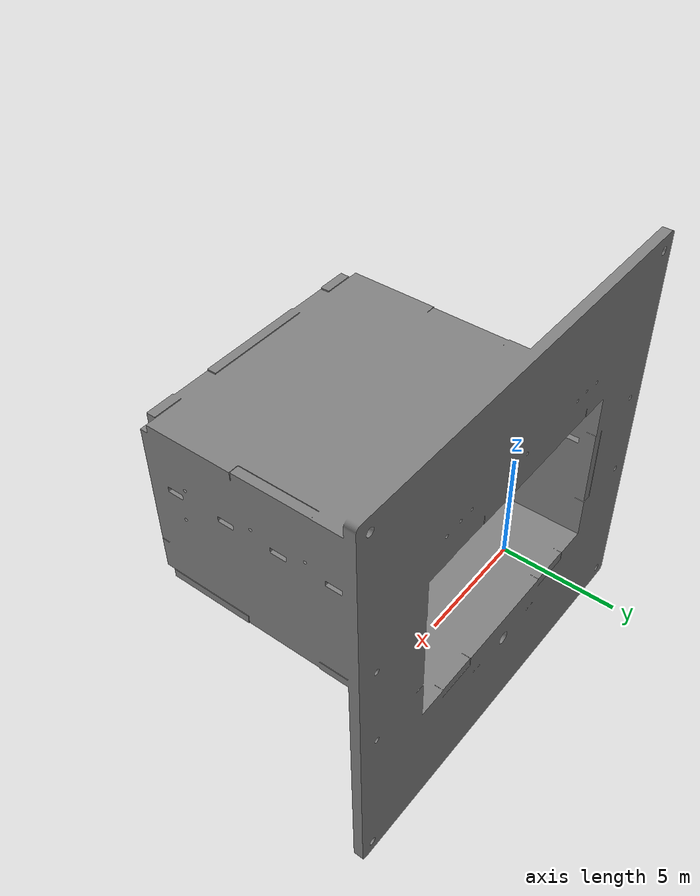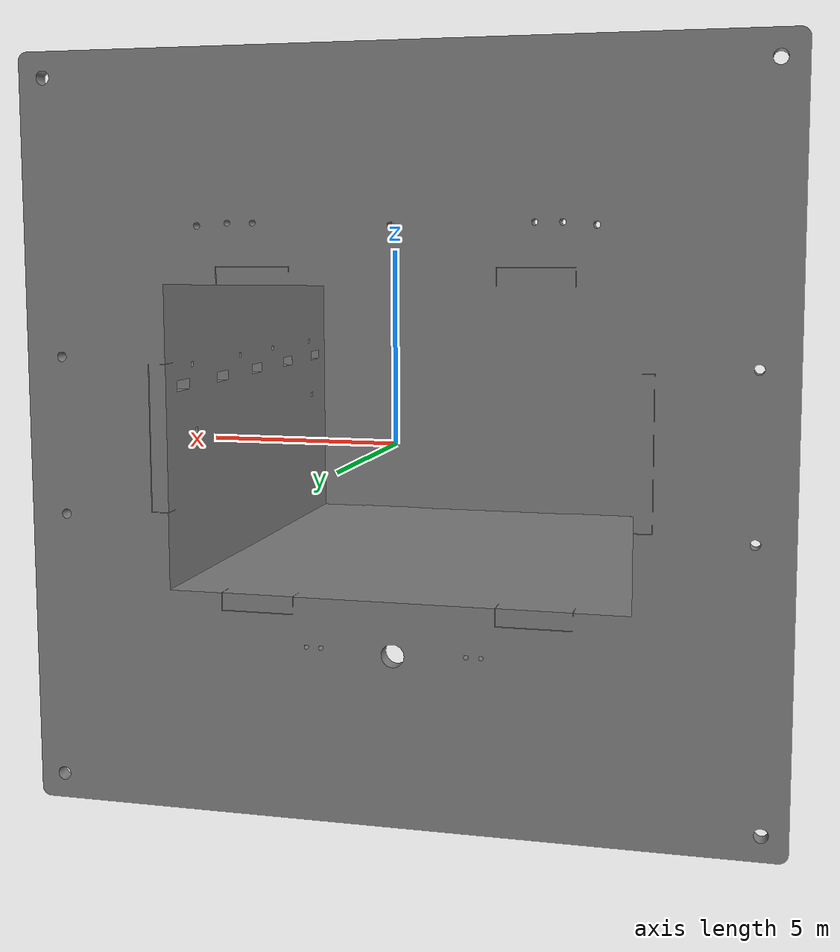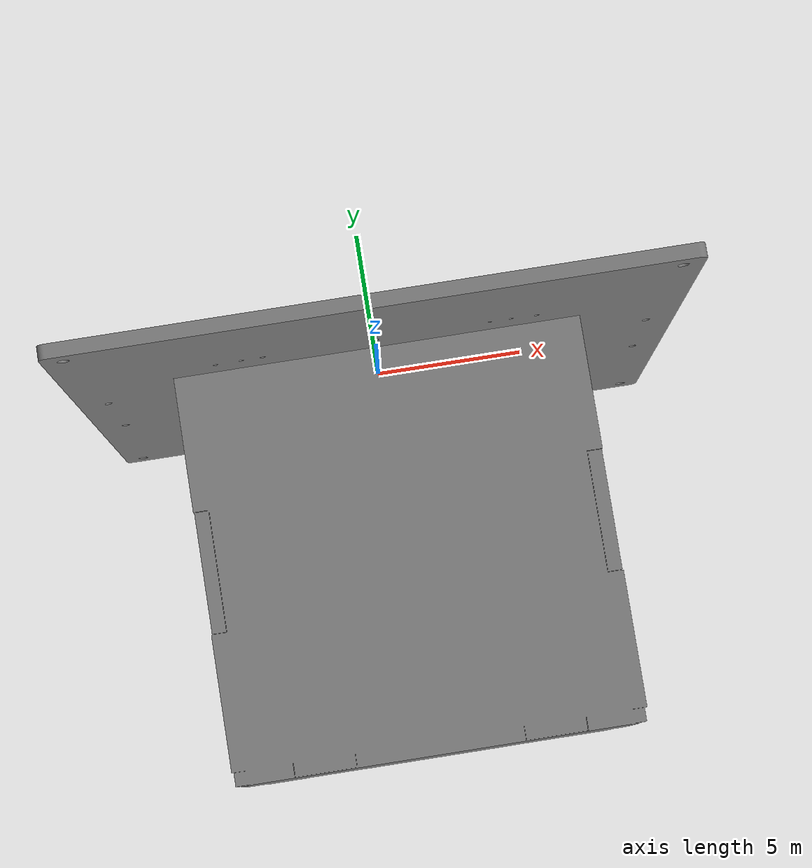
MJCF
<mujoco model="aso_locker_cavity_only">
  <default>
    <default class="visual">
      <geom group="2" type="mesh" contype="0" conaffinity="0"/>
    </default>
    <default class="collision">
      <geom group="3" type="mesh"/>
    </default>
  </default>
  <asset>
    <material name="mtl_aso_locker_cavity_only" specular="0.20000000000000004" shininess="1.0" rgba="0.50196078 0.50196078 0.50196078 1.0"/>
    <mesh file="aso_locker_cavity_only.obj"/>
  </asset>
  <worldbody>
    <body name="aso_locker_cavity_only">
      <geom material="mtl_aso_locker_cavity_only" mesh="aso_locker_cavity_only" class="visual"/>
      <geom mesh="aso_locker_cavity_only" class="collision"/>
    </body>
  </worldbody>
</mujoco>
